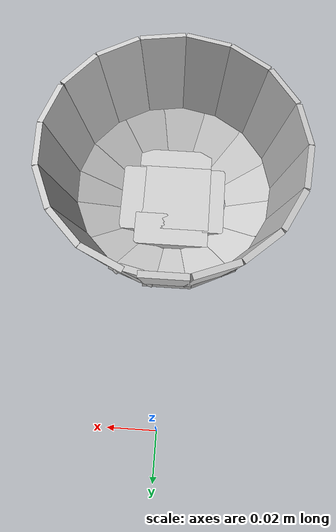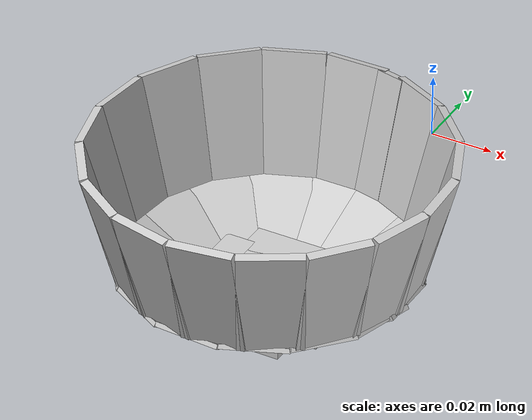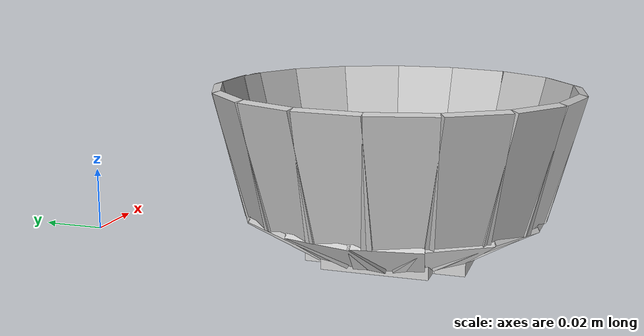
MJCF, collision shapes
<mujoco model="akita_purple_bowl">
  <asset>
    <texture file="purple_texture.png" name="tex-akita_purple_bowl" type="2d" />
    <material name="akita_purple_bowl" reflectance="0.5" texrepeat="1 1"
      texture="tex-akita_purple_bowl" texuniform="false" />
    <mesh file="visual/akita_bowl_vis.msh" name="akita_bowl_vis" scale="0.7 0.7 0.7" />
  </asset>
  <worldbody>
    <body>
      <body name="object" pos="0 -0.1 0">
        <geom solimp="0.998 0.998 0.001" solref="0.001 1" density="100" friction="0.95 0.3 0.1"
          type="mesh" mesh="akita_bowl_vis" conaffinity="0" contype="0" group="1"
          material="akita_purple_bowl" />
        <geom solimp="0.998 0.998 0.001" solref="0.001 1" density="100" friction="0.95 0.3 0.1"
          type="box" pos="-0.00010 0.03361 0.00939" quat="0.60990 -0.35780 -0.35780 -0.60990"
          size="0.00071 0.00992 0.01187" group="0" rgba="0.8 0.8 0.8 0.3" />
        <geom solimp="0.998 0.998 0.001" solref="0.001 1" density="100" friction="0.95 0.3 0.1"
          type="box" pos="-0.01469 0.03017 0.00959" quat="0.45959 -0.42672 0.26704 0.73169"
          size="0.00071 0.00992 0.01187" group="0" rgba="0.8 0.8 0.8 0.3" />
        <geom solimp="0.998 0.998 0.001" solref="0.001 1" density="100" friction="0.95 0.3 0.1"
          type="box" pos="-0.02605 0.02108 0.00975" quat="0.29172 -0.47299 0.16619 0.81459"
          size="0.00071 0.00992 0.01187" group="0" rgba="0.8 0.8 0.8 0.3" />
        <geom solimp="0.998 0.998 0.001" solref="0.001 1" density="100" friction="0.95 0.3 0.1"
          type="box" pos="-0.03253 0.00793 0.00984" quat="0.10855 -0.49698 0.05658 0.85908"
          size="0.00071 0.00992 0.01187" group="0" rgba="0.8 0.8 0.8 0.3" />
        <geom solimp="0.998 0.998 0.001" solref="0.001 1" density="100" friction="0.95 0.3 0.1"
          type="box" pos="-0.03287 -0.00635 0.00984" quat="0.49761 -0.07722 0.86246 0.05074"
          size="0.00071 0.00992 0.01187" group="0" rgba="0.8 0.8 0.8 0.3" />
        <geom solimp="0.998 0.998 0.001" solref="0.001 1" density="100" friction="0.95 0.3 0.1"
          type="box" pos="-0.02692 -0.01990 0.00984" quat="0.47408 -0.26597 0.82406 0.15949"
          size="0.00071 0.00992 0.01187" group="0" rgba="0.8 0.8 0.8 0.3" />
        <geom solimp="0.998 0.998 0.001" solref="0.001 1" density="100" friction="0.95 0.3 0.1"
          type="box" pos="-0.01557 -0.02964 0.00984" quat="0.42646 -0.44336 0.74380 0.26138"
          size="0.00071 0.00992 0.01187" group="0" rgba="0.8 0.8 0.8 0.3" />
        <geom solimp="0.998 0.998 0.001" solref="0.001 1" density="100" friction="0.95 0.3 0.1"
          type="box" pos="-0.00121 -0.03346 0.00984" quat="0.59728 0.35787 0.34946 -0.62695"
          size="0.00071 0.00992 0.01187" group="0" rgba="0.8 0.8 0.8 0.3" />
        <geom solimp="0.998 0.998 0.001" solref="0.001 1" density="100" friction="0.95 0.3 0.1"
          type="box" pos="0.01351 -0.03063 0.00984" quat="0.72249 0.27055 0.42070 -0.47731"
          size="0.00071 0.00992 0.01187" group="0" rgba="0.8 0.8 0.8 0.3" />
        <geom solimp="0.998 0.998 0.001" solref="0.001 1" density="100" friction="0.95 0.3 0.1"
          type="box" pos="0.02523 -0.02201 0.00984" quat="0.17267 -0.80894 0.30891 0.46945"
          size="0.00071 0.00992 0.01187" group="0" rgba="0.8 0.8 0.8 0.3" />
        <geom solimp="0.998 0.998 0.001" solref="0.001 1" density="100" friction="0.95 0.3 0.1"
          type="box" pos="0.03222 -0.00910 0.00984" quat="0.85700 0.06550 0.49588 -0.12397"
          size="0.00071 0.00992 0.01187" group="0" rgba="0.8 0.8 0.8 0.3" />
        <geom solimp="0.998 0.998 0.001" solref="0.001 1" density="100" friction="0.95 0.3 0.1"
          type="box" pos="0.03222 -0.00910 0.00984" quat="0.85700 0.06550 0.49588 -0.12397"
          size="0.00071 0.00992 0.01187" group="0" rgba="0.8 0.8 0.8 0.3" />
        <geom solimp="0.998 0.998 0.001" solref="0.001 1" density="100" friction="0.95 0.3 0.1"
          type="box" pos="0.03348 0.00022 0.00984" quat="0.86591 -0.00473 0.50017 -0.00248"
          size="0.00071 0.00992 0.01187" group="0" rgba="0.8 0.8 0.8 0.3" />
        <geom solimp="0.998 0.998 0.001" solref="0.001 1" density="100" friction="0.95 0.3 0.1"
          type="box" pos="0.03036 0.01411 0.00984" quat="0.84663 -0.11101 0.48771 0.18175"
          size="0.00071 0.00992 0.01187" group="0" rgba="0.8 0.8 0.8 0.3" />
        <geom solimp="0.998 0.998 0.001" solref="0.001 1" density="100" friction="0.95 0.3 0.1"
          type="box" pos="0.02156 0.02562 0.00984" quat="0.21392 0.78724 0.36065 -0.45213"
          size="0.00071 0.00992 0.01187" group="0" rgba="0.8 0.8 0.8 0.3" />
        <geom solimp="0.998 0.998 0.001" solref="0.001 1" density="100" friction="0.95 0.3 0.1"
          type="box" pos="0.01157 0.03142 0.00984" quat="0.71324 -0.28870 0.40847 0.49101"
          size="0.00071 0.00992 0.01187" group="0" rgba="0.8 0.8 0.8 0.3" />
        <geom solimp="0.998 0.998 0.001" solref="0.001 1" density="100" friction="0.95 0.3 0.1"
          type="box" pos="-0.00010 0.04712 0.03367" quat="0.09041 0.70130 0.70130 -0.09041"
          size="0.00128 0.00934 0.01875" group="0" rgba="0.8 0.8 0.8 0.3" />
        <geom solimp="0.998 0.998 0.001" solref="0.001 1" density="100" friction="0.95 0.3 0.1"
          type="box" pos="-0.01724 0.04385 0.03367" quat="0.10558 0.55930 0.81905 -0.07209"
          size="0.00128 0.00934 0.01875" group="0" rgba="0.8 0.8 0.8 0.3" />
        <geom solimp="0.998 0.998 0.001" solref="0.001 1" density="100" friction="0.95 0.3 0.1"
          type="box" pos="-0.03174 0.03483 0.03367" quat="0.11689 0.40164 0.90683 -0.05176"
          size="0.00128 0.00934 0.01875" group="0" rgba="0.8 0.8 0.8 0.3" />
        <geom solimp="0.998 0.998 0.001" solref="0.001 1" density="100" friction="0.95 0.3 0.1"
          type="box" pos="-0.04214 0.02108 0.03367" quat="0.22890 -0.12439 0.02951 0.96502"
          size="0.00128 0.00934 0.01875" group="0" rgba="0.8 0.8 0.8 0.3" />
        <geom solimp="0.998 0.998 0.001" solref="0.001 1" density="100" friction="0.95 0.3 0.1"
          type="box" pos="-0.04689 0.00460 0.03367" quat="0.12768 0.04949 0.99056 -0.00638"
          size="0.00128 0.00934 0.01875" group="0" rgba="0.8 0.8 0.8 0.3" />
        <geom solimp="0.998 0.998 0.001" solref="0.001 1" density="100" friction="0.95 0.3 0.1"
          type="box" pos="-0.04555 -0.01204 0.03367" quat="0.12679 0.12680 0.01635 -0.98366"
          size="0.00128 0.00934 0.01875" group="0" rgba="0.8 0.8 0.8 0.3" />
        <geom solimp="0.998 0.998 0.001" solref="0.001 1" density="100" friction="0.95 0.3 0.1"
          type="box" pos="-0.03825 -0.02751 0.03367" quat="0.12173 -0.30325 0.94430 0.03909"
          size="0.00128 0.00934 0.01875" group="0" rgba="0.8 0.8 0.8 0.3" />
        <geom solimp="0.998 0.998 0.001" solref="0.001 1" density="100" friction="0.95 0.3 0.1"
          type="box" pos="-0.02576 -0.03946 0.03367" quat="0.11249 -0.47128 0.87267 0.06075"
          size="0.00128 0.00934 0.01875" group="0" rgba="0.8 0.8 0.8 0.3" />
        <geom solimp="0.998 0.998 0.001" solref="0.001 1" density="100" friction="0.95 0.3 0.1"
          type="box" pos="-0.01010 -0.04602 0.03367" quat="0.62080 0.09971 0.08003 -0.77348"
          size="0.00128 0.00934 0.01875" group="0" rgba="0.8 0.8 0.8 0.3" />
        <geom solimp="0.998 0.998 0.001" solref="0.001 1" density="100" friction="0.95 0.3 0.1"
          type="box" pos="0.00698 -0.04660 0.03367" quat="0.75082 0.08352 0.09678 -0.64802"
          size="0.00128 0.00934 0.01875" group="0" rgba="0.8 0.8 0.8 0.3" />
        <geom solimp="0.998 0.998 0.001" solref="0.001 1" density="100" friction="0.95 0.3 0.1"
          type="box" pos="0.02325 -0.04098 0.03367" quat="0.06445 -0.85651 0.50004 0.11041"
          size="0.00128 0.00934 0.01875" group="0" rgba="0.8 0.8 0.8 0.3" />
        <geom solimp="0.998 0.998 0.001" solref="0.001 1" density="100" friction="0.95 0.3 0.1"
          type="box" pos="0.03631 -0.03003 0.03367" quat="0.93283 0.04342 0.12024 -0.33687"
          size="0.00128 0.00934 0.01875" group="0" rgba="0.8 0.8 0.8 0.3" />
        <geom solimp="0.998 0.998 0.001" solref="0.001 1" density="100" friction="0.95 0.3 0.1"
          type="box" pos="0.04475 -0.01475 0.03367" quat="0.02040 -0.97909 0.15826 0.12620"
          size="0.00128 0.00934 0.01875" group="0" rgba="0.8 0.8 0.8 0.3" />
        <geom solimp="0.998 0.998 0.001" solref="0.001 1" density="100" friction="0.95 0.3 0.1"
          type="box" pos="0.04708 0.00185 0.03367" quat="0.00238 0.99162 0.01844 -0.12782"
          size="0.00128 0.00934 0.01875" group="0" rgba="0.8 0.8 0.8 0.3" />
        <geom solimp="0.998 0.998 0.001" solref="0.001 1" density="100" friction="0.95 0.3 0.1"
          type="box" pos="0.04708 0.00185 0.03367" quat="0.00238 0.99162 0.01844 -0.12782"
          size="0.00128 0.00934 0.01875" group="0" rgba="0.8 0.8 0.8 0.3" />
        <geom solimp="0.998 0.998 0.001" solref="0.001 1" density="100" friction="0.95 0.3 0.1"
          type="box" pos="0.04341 0.01832 0.03367" quat="0.02524 0.97229 0.19574 -0.12533"
          size="0.00128 0.00934 0.01875" group="0" rgba="0.8 0.8 0.8 0.3" />
        <geom solimp="0.998 0.998 0.001" solref="0.001 1" density="100" friction="0.95 0.3 0.1"
          type="box" pos="0.03416 0.03245 0.03367" quat="0.04729 0.92146 0.36683 -0.11878"
          size="0.00128 0.00934 0.01875" group="0" rgba="0.8 0.8 0.8 0.3" />
        <geom solimp="0.998 0.998 0.001" solref="0.001 1" density="100" friction="0.95 0.3 0.1"
          type="box" pos="0.02067 0.04234 0.03367" quat="0.06760 0.84175 0.52452 -0.10850"
          size="0.00128 0.00934 0.01875" group="0" rgba="0.8 0.8 0.8 0.3" />
        <geom solimp="0.998 0.998 0.001" solref="0.001 1" density="100" friction="0.95 0.3 0.1"
          type="box" pos="0.01056 0.04592 0.03367" quat="0.07953 0.77656 0.61693 -0.10010"
          size="0.00125 0.00444 0.01872" group="0" rgba="0.8 0.8 0.8 0.3" />
        <geom solimp="0.998 0.998 0.001" solref="0.001 1" density="100" friction="0.95 0.3 0.1"
          type="box" pos="-0.00000 -0.00075 0.00417" quat="0.70711 0.00000 0.70711 0.00000"
          size="0.00258 0.01547 0.01617" group="0" rgba="0.8 0.8 0.8 0.3" />
        <geom solimp="0.998 0.998 0.001" solref="0.001 1" density="100" friction="0.95 0.3 0.1"
          type="box" pos="-0.00000 -0.02021 0.00417" quat="0.70711 0.00000 0.70711 0.00000"
          size="0.00258 0.00431 0.01617" group="0" rgba="0.8 0.8 0.8 0.3" />
        <geom solimp="0.998 0.998 0.001" solref="0.001 1" density="100" friction="0.95 0.3 0.1"
          type="box" pos="0.01821 0.00016 0.00417" quat="0.50000 -0.50000 0.50000 0.50000"
          size="0.00258 0.00495 0.01547" group="0" rgba="0.8 0.8 0.8 0.3" />
        <geom solimp="0.998 0.998 0.001" solref="0.001 1" density="100" friction="0.95 0.3 0.1"
          type="box" pos="-0.01810 0.00004 0.00417" quat="0.50000 -0.50000 0.50000 0.50000"
          size="0.00258 0.00453 0.01547" group="0" rgba="0.8 0.8 0.8 0.3" />
        <geom solimp="0.998 0.998 0.001" solref="0.001 1" density="100" friction="0.95 0.3 0.1"
          type="box" pos="-0.00000 0.01490 0.00417" quat="0.00000 0.70711 0.00000 -0.70711"
          size="0.00258 0.00741 0.01617" group="0" rgba="0.8 0.8 0.8 0.3" />
      </body>
      <site rgba="0 0 0 0" size="0.005" pos="0 0 -0.06" name="bottom_site" />
      <site rgba="0 0 0 0" size="0.005" pos="0 0 0.04" name="top_site" />
      <site rgba="0 0 0 0" size="0.005" pos="0.025 0.025 0" name="horizontal_radius_site" />
    </body>
  </worldbody>
</mujoco>
